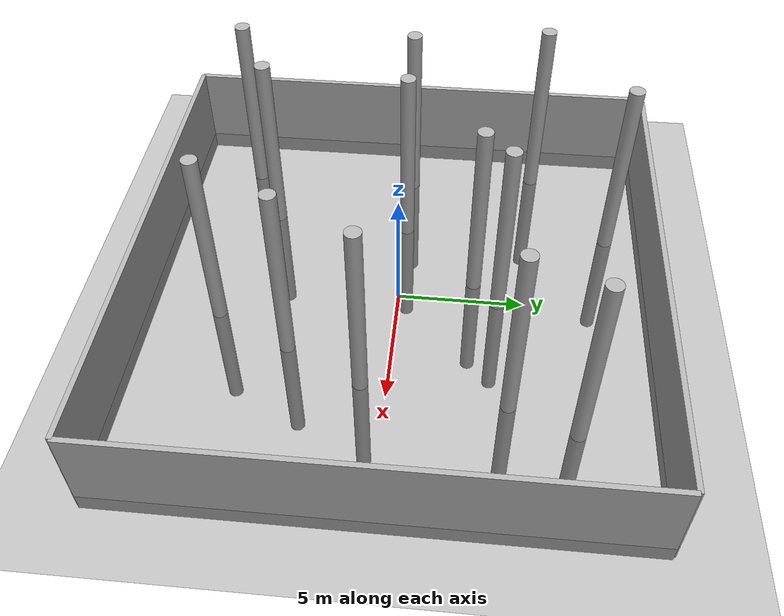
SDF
<sdf version="1.9">
 <world name="map">
  <physics name="1ms" type="ignore">
   <max_step_size>0.001</max_step_size>
   <real_time_factor>1.0</real_time_factor>
  </physics>
  <plugin filename="gz-sim-physics-system" name="gz::sim::systems::Physics"/>
  <plugin filename="gz-sim-sensors-system" name="gz::sim::systems::Sensors">
   <render_engine>ogre2</render_engine>
  </plugin>
  <plugin filename="gz-sim-user-commands-system" name="gz::sim::systems::UserCommands"/>
  <plugin filename="gz-sim-scene-broadcaster-system" name="gz::sim::systems::SceneBroadcaster"/>
  <plugin filename="gz-sim-air-pressure-system" name="gz::sim::systems::AirPressure"/>
  <plugin filename="gz-sim-air-speed-system" name="gz::sim::systems::AirSpeed"/>
  <plugin filename="gz-sim-altimeter-system" name="gz::sim::systems::Altimeter"/>
  <plugin filename="gz-sim-imu-system" name="gz::sim::systems::Imu"/>
  <plugin filename="gz-sim-magnetometer-system" name="gz::sim::systems::Magnetometer"/>
  <plugin filename="gz-sim-navsat-system" name="gz::sim::systems::NavSat"/>
  <light type="directional" name="sun">
   <pose>0 0 10 0 0 0</pose>
   <diffuse>0.8 0.8 0.8 1</diffuse>
   <specular>0.8 0.8 0.8 1</specular>
   <attenuation>
    <range>1000</range>
    <constant>0.9</constant>
    <linear>0.01</linear>
    <quadratic>0.001</quadratic>
   </attenuation>
   <direction>-0.5 0.1 -0.9</direction>
  </light>
  <spherical_coordinates>
   <latitude_deg>-35.3632621</latitude_deg>
   <longitude_deg>149.1652374</longitude_deg>
   <elevation>10.0</elevation>
   <heading_deg>0</heading_deg>
   <surface_model>EARTH_WGS84</surface_model>
  </spherical_coordinates>
  <model name="maze">
   <static>1</static>
   <link name="Wall_0">
    <pose degrees="true">-10 -10 0 0 0 90</pose>
    <collision name="Wall_0_Collision">
     <pose>10 0 1.25 0 0 0</pose>
     <geometry><box><size>20 0.2 4</size></box></geometry>
    </collision>
    <visual name="Wall_0_Visual">
     <pose>10 0 1.25 0 0 0</pose>
     <geometry><box><size>20 0.2 4</size></box></geometry>
     <material><diffuse>0.699999988 0.699999988 0.699999988 1</diffuse></material>
    </visual>
   </link>
   <link name="Wall_1">
    <pose>-10 -10 0 0 0 0</pose>
    <collision name="Wall_1_Collision">
     <pose>10 0 1.25 0 0 0</pose>
     <geometry><box><size>20 0.2 4</size></box></geometry>
    </collision>
    <visual name="Wall_1_Visual">
     <pose>10 0 1.25 0 0 0</pose>
     <geometry><box><size>20 0.2 4</size></box></geometry>
     <material><diffuse>0.699999988 0.699999988 0.699999988 1</diffuse></material>
    </visual>
   </link>
   <link name="Wall_2">
    <pose degrees="true">10 -10 0 0 0 90</pose>
    <collision name="Wall_2_Collision">
     <pose>10 0 1.25 0 0 0</pose>
     <geometry><box><size>20 0.2 4</size></box></geometry>
    </collision>
    <visual name="Wall_2_Visual">
     <pose>10 0 1.25 0 0 0</pose>
     <geometry><box><size>20 0.2 4</size></box></geometry>
     <material><diffuse>0.699999988 0.699999988 0.699999988 1</diffuse></material>
    </visual>
   </link>
   <link name="Wall_3">
    <pose>-10 10 0 0 0 0</pose>
    <collision name="Wall_3_Collision">
     <pose>10 0 1.25 0 0 0</pose>
     <geometry><box><size>20 0.2 4</size></box></geometry>
    </collision>
    <visual name="Wall_3_Visual">
     <pose>10 0 1.25 0 0 0</pose>
     <geometry><box><size>20 0.2 4</size></box></geometry>
     <material><diffuse>0.699999988 0.699999988 0.699999988 1</diffuse></material>
    </visual>
   </link>
   <link name="Wall_4">
    <pose>-7 -7 0 0 0 0</pose>
    <collision name="Wall_4_Collision">
     <pose>8.5 0 1.25 0 0 0</pose>
     <geometry><cylinder><radius>0.3</radius><length>13</length></cylinder></geometry>
    </collision>
    <visual name="Wall_4_Visual">
     <pose>8.5 0 1.25 0 0 0</pose>
     <geometry><cylinder><radius>0.3</radius><length>13</length></cylinder></geometry>
     <material><diffuse>0.699999988 0.699999988 0.699999988 1</diffuse></material>
    </visual>
   </link>
   <link name="Wall_5">
    <pose degrees="true">-7 -7 0 0 0 90</pose>
    <collision name="Wall_5_Collision">
     <pose>7 0 1.25 0 0 0</pose>
     <geometry><cylinder><radius>0.3</radius><length>13</length></cylinder></geometry>
    </collision>
    <visual name="Wall_5_Visual">
     <pose>7 0 1.25 0 0 0</pose>
     <geometry><cylinder><radius>0.3</radius><length>13</length></cylinder></geometry>
     <material><diffuse>0.699999988 0.699999988 0.699999988 1</diffuse></material>
    </visual>
   </link>
   <link name="Wall_6">
    <pose>-4 -4 0 0 0 0</pose>
    <collision name="Wall_6_Collision">
     <pose>7 0 1.25 0 0 0</pose>
     <geometry><cylinder><radius>0.3</radius><length>13</length></cylinder></geometry>
    </collision>
    <visual name="Wall_6_Visual">
     <pose>7 0 1.25 0 0 0</pose>
     <geometry><cylinder><radius>0.3</radius><length>13</length></cylinder></geometry>
     <material><diffuse>0.699999988 0.699999988 0.699999988 1</diffuse></material>
    </visual>
   </link>
   <link name="Wall_7">
    <pose degrees="true">-4 -4 0 0 0 90</pose>
    <collision name="Wall_7_Collision">
     <pose>4 0 1.25 0 0 0</pose>
     <geometry><cylinder><radius>0.3</radius><length>13</length></cylinder></geometry>
    </collision>
    <visual name="Wall_7_Visual">
     <pose>4 0 1.25 0 0 0</pose>
     <geometry><cylinder><radius>0.3</radius><length>13</length></cylinder></geometry>
     <material><diffuse>0.699999988 0.699999988 0.699999988 1</diffuse></material>
    </visual>
   </link>
   <link name="Wall_8">
    <pose>-1 -1 0 0 0 0</pose>
    <collision name="Wall_8_Collision">
     <pose>5.5 0 1.25 0 0 0</pose>
     <geometry><cylinder><radius>0.3</radius><length>13</length></cylinder></geometry>
    </collision>
    <visual name="Wall_8_Visual">
     <pose>5.5 0 1.25 0 0 0</pose>
     <geometry><cylinder><radius>0.3</radius><length>13</length></cylinder></geometry>
     <material><diffuse>0.699999988 0.699999988 0.699999988 1</diffuse></material>
    </visual>
   </link>
   <link name="Wall_9">
    <pose degrees="true">-1 -1 0 0 0 90</pose>
    <collision name="Wall_9_Collision">
     <pose>4 0 1.25 0 0 0</pose>
     <geometry><cylinder><radius>0.3</radius><length>13</length></cylinder></geometry>
    </collision>
    <visual name="Wall_9_Visual">
     <pose>4 0 1.25 0 0 0</pose>
     <geometry><cylinder><radius>0.3</radius><length>13</length></cylinder></geometry>
     <material><diffuse>0.699999988 0.699999988 0.699999988 1</diffuse></material>
    </visual>
   </link>
   <link name="Wall_10">
    <pose degrees="true">-4 7 0 0 0 90</pose>
    <collision name="Wall_10_Collision">
     <pose>1.5 0 1.25 0 0 0</pose>
     <geometry><cylinder><radius>0.3</radius><length>13</length></cylinder></geometry>
    </collision>
    <visual name="Wall_10_Visual">
     <pose>1.5 0 1.25 0 0 0</pose>
     <geometry><cylinder><radius>0.3</radius><length>13</length></cylinder></geometry>
     <material><diffuse>0.699999988 0.699999988 0.699999988 1</diffuse></material>
    </visual>
   </link>
   <link name="Wall_11">
    <pose>-1 4 0 0 0 0</pose>
    <collision name="Wall_11_Collision">
     <pose>1 0 1.25 0 0 0</pose>
     <geometry><cylinder><radius>0.3</radius><length>13</length></cylinder></geometry>
    </collision>
    <visual name="Wall_11_Visual">
     <pose>1 0 1.25 0 0 0</pose>
     <geometry><cylinder><radius>0.3</radius><length>13</length></cylinder></geometry>
     <material><diffuse>0.699999988 0.699999988 0.699999988 1</diffuse></material>
    </visual>
   </link>
   <link name="Wall_12">
    <pose>2 7 0 0 0 0</pose>
    <collision name="Wall_12_Collision">
     <pose>4 0 1.25 0 0 0</pose>
     <geometry><cylinder><radius>0.3</radius><length>13</length></cylinder></geometry>
    </collision>
    <visual name="Wall_12_Visual">
     <pose>4 0 1.25 0 0 0</pose>
     <geometry><cylinder><radius>0.3</radius><length>13</length></cylinder></geometry>
     <material><diffuse>0.699999988 0.699999988 0.699999988 1</diffuse></material>
    </visual>
   </link>
   <link name="Wall_13">
    <pose degrees="true">5 2 0 0 0 90</pose>
    <collision name="Wall_13_Collision">
     <pose>2.5 0 1.25 0 0 0</pose>
     <geometry><cylinder><radius>0.3</radius><length>13</length></cylinder></geometry>
    </collision>
    <visual name="Wall_13_Visual">
     <pose>2.5 0 1.25 0 0 0</pose>
     <geometry><cylinder><radius>0.3</radius><length>13</length></cylinder></geometry>
     <material><diffuse>0.699999988 0.699999988 0.699999988 1</diffuse></material>
    </visual>
   </link>
   <link name="Wall_14">
    <pose>-7 -7 0 0 0 90</pose>
    <collision name="Wall_14_Collision">
     <pose>0 0 1.25 0 0 0</pose>
     <geometry><cylinder><radius>0.3</radius><length>13</length></cylinder></geometry>
    </collision>
    <visual name="Wall_14_Visual">
     <pose>0 0 1.25 0 0 0</pose>
     <geometry><cylinder><radius>0.3</radius><length>13</length></cylinder></geometry>
     <material><diffuse>0.699999988 0.699999988 0.699999988 1</diffuse></material>
    </visual>
   </link>
   <link name="Wall_15">
    <pose>-7 -7 0 0 0 90</pose>
    <collision name="Wall_15_Collision">
     <pose>0 -3 1.25 0 0 0</pose>
     <geometry><cylinder><radius>0.3</radius><length>13</length></cylinder></geometry>
    </collision>
    <visual name="Wall_15_Visual">
     <pose>0 -3 1.25 0 0 0</pose>
     <geometry><cylinder><radius>0.3</radius><length>13</length></cylinder></geometry>
     <material><diffuse>0.699999988 0.699999988 0.699999988 1</diffuse></material>
    </visual>
   </link>
   <link name="Wall_16">
    <pose>-6 4 0 0 0 90</pose>
    <collision name="Wall_16_Collision">
     <pose>2 1 1.25 0 0 0</pose>
     <geometry><cylinder><radius>0.3</radius><length>13</length></cylinder></geometry>
    </collision>
    <visual name="Wall_16_Visual">
     <pose>2 1 1.25 0 0 0</pose>
     <geometry><cylinder><radius>0.3</radius><length>13</length></cylinder></geometry>
     <material><diffuse>0.699999988 0.699999988 0.699999988 1</diffuse></material>
    </visual>
   </link>
  </model>
  <model name="floor">
   <static>true</static>
   <link name="link">
    <collision name="collision">
     <geometry><plane><normal>0 0 1</normal><size>100 100</size></plane></geometry>
     <surface><friction><ode><mu>100</mu><mu2>50</mu2></ode></friction></surface>
    </collision>
    <visual name="visual">
     <cast_shadows>false</cast_shadows>
     <geometry><plane><normal>0 0 1</normal><size>100 100</size></plane></geometry>
     <material><diffuse>0.3 0.3 0.3 1</diffuse></material>
    </visual>
   </link>
  </model>
 </world>
</sdf>
